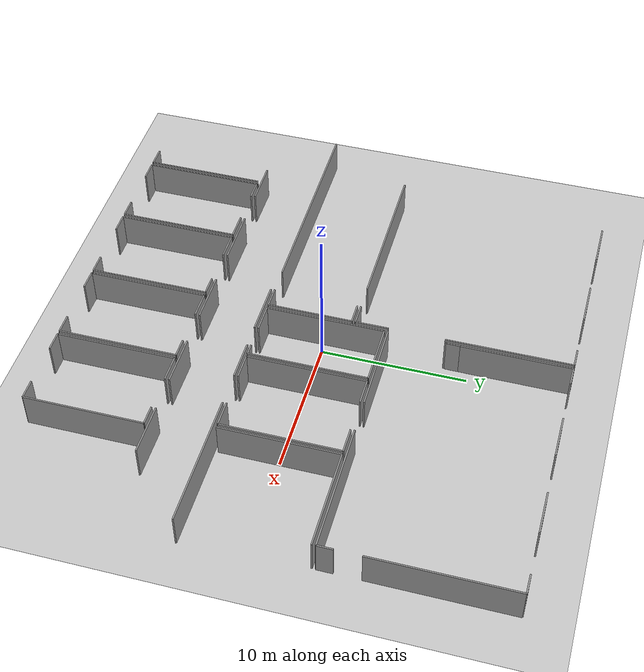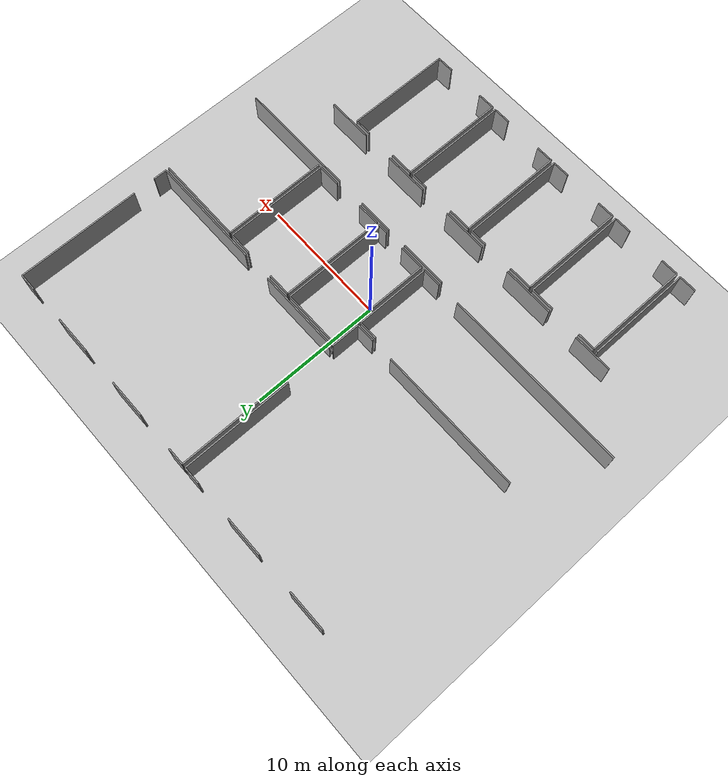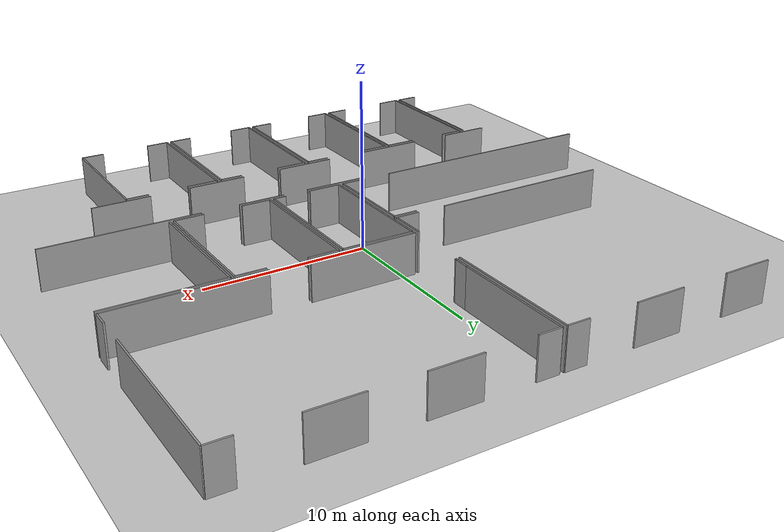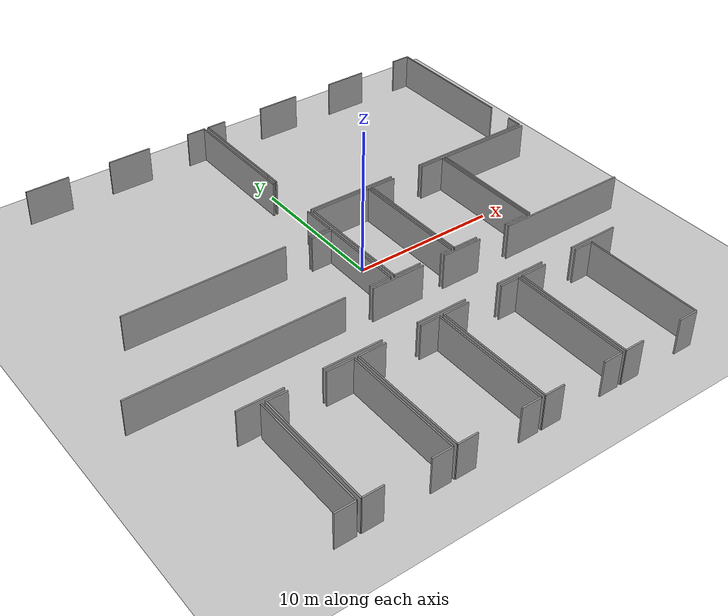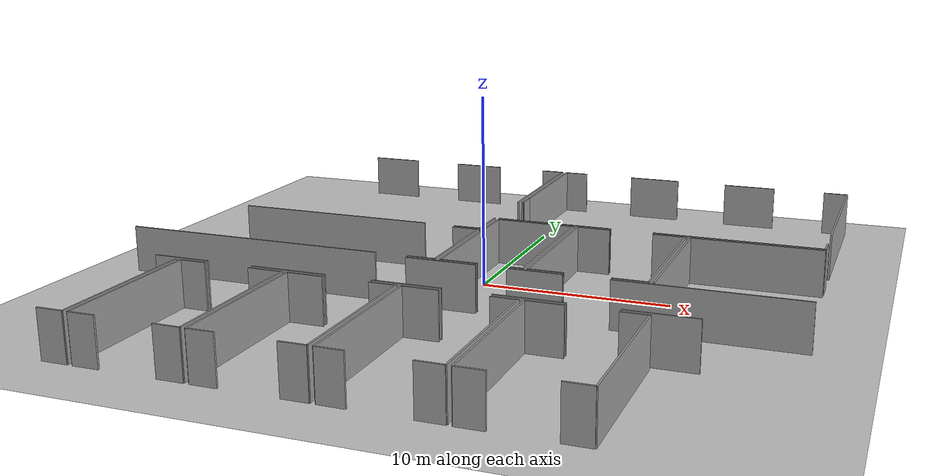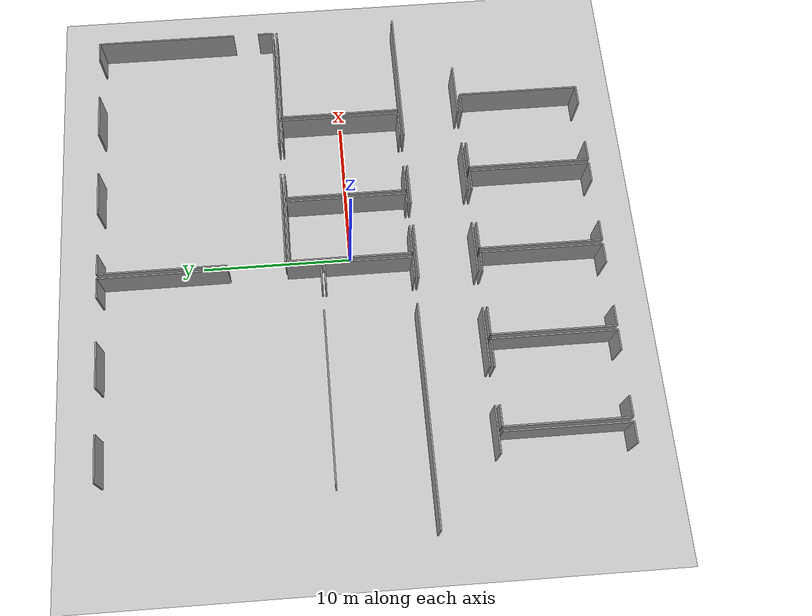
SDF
<sdf version="1.6">
 <world name="default">
  <model name="ground_plane">
   <static>1</static>
   <link name="link">
    <collision name="collision">
     <geometry><plane><normal>0 0 1</normal><size>100 100</size></plane></geometry>
     <surface><friction><ode><mu>100</mu><mu2>50</mu2></ode></friction></surface>
    </collision>
    <visual name="visual">
     <cast_shadows>0</cast_shadows>
     <geometry><plane><normal>0 0 1</normal><size>100 100</size></plane></geometry>
     <material>
      <script><uri>file://media/materials/scripts/gazebo.material</uri><name>Gazebo/Grey</name></script>
     </material>
    </visual>
   </link>
  </model>
  <model name="50041174">
   <static>1</static>
   <link name="Wall_40">
    <collision name="Wall_40_Collision">
     <geometry><box><size>8.21363290175 0.1 2.5</size></box></geometry>
     <pose>4.10681645088 0 1.25 0 0 0</pose>
    </collision>
    <visual name="Wall_40_Visual">
     <pose>4.10681645088 0 1.25 0 0 0</pose>
     <geometry><box><size>8.21363290175 0.1 2.5</size></box></geometry>
     <material>
      <script><uri>file://media/materials/scripts/gazebo.material</uri><name>Gazebo/Grey</name></script>
      <ambient>1 1 1 1</ambient>
     </material>
    </visual>
    <pose>53.4805788271 -25.3062960142 0 0 0 -1.57079632679</pose>
   </link>
   <link name="Wall_41">
    <collision name="Wall_41_Collision">
     <geometry><box><size>1.36735211983 0.1 2.5</size></box></geometry>
     <pose>0.683676059914 0 1.25 0 0 0</pose>
    </collision>
    <visual name="Wall_41_Visual">
     <pose>0.683676059914 0 1.25 0 0 0</pose>
     <geometry><box><size>1.36735211983 0.1 2.5</size></box></geometry>
     <material>
      <script><uri>file://media/materials/scripts/gazebo.material</uri><name>Gazebo/Grey</name></script>
      <ambient>1 1 1 1</ambient>
     </material>
    </visual>
    <pose>53.4805788271 -33.519928916 0 0 0 3.14159265359</pose>
   </link>
   <link name="Wall_43">
    <collision name="Wall_43_Collision">
     <geometry><box><size>8.21452145215 0.1 2.5</size></box></geometry>
     <pose>4.10726072607 0 1.25 0 0 0</pose>
    </collision>
    <visual name="Wall_43_Visual">
     <pose>4.10726072607 0 1.25 0 0 0</pose>
     <geometry><box><size>8.21452145215 0.1 2.5</size></box></geometry>
     <material>
      <script><uri>file://media/materials/scripts/gazebo.material</uri><name>Gazebo/Grey</name></script>
      <ambient>1 1 1 1</ambient>
     </material>
    </visual>
    <pose>53.769357705 -33.5241177964 0 0 0 1.57079632679</pose>
   </link>
   <link name="Wall_44">
    <collision name="Wall_44_Collision">
     <geometry><box><size>1.39730896167 0.1 2.5</size></box></geometry>
     <pose>0.698654480833 0 1.25 0 0 0</pose>
    </collision>
    <visual name="Wall_44_Visual">
     <pose>0.698654480833 0 1.25 0 0 0</pose>
     <geometry><box><size>1.39730896167 0.1 2.5</size></box></geometry>
     <material>
      <script><uri>file://media/materials/scripts/gazebo.material</uri><name>Gazebo/Grey</name></script>
      <ambient>1 1 1 1</ambient>
     </material>
    </visual>
    <pose>53.769357705 -25.3095963442 0 0 0 0.0</pose>
   </link>
   <link name="Wall_45">
    <collision name="Wall_45_Collision">
     <geometry><box><size>1.86570195481 0.1 2.5</size></box></geometry>
     <pose>0.932850977405 0 1.25 0 0 0</pose>
    </collision>
    <visual name="Wall_45_Visual">
     <pose>0.932850977405 0 1.25 0 0 0</pose>
     <geometry><box><size>1.86570195481 0.1 2.5</size></box></geometry>
     <material>
      <script><uri>file://media/materials/scripts/gazebo.material</uri><name>Gazebo/Grey</name></script>
      <ambient>1 1 1 1</ambient>
     </material>
    </visual>
    <pose>57.6200812389 -25.3095963442 0 0 0 0.0</pose>
   </link>
   <link name="Wall_46">
    <collision name="Wall_46_Collision">
     <geometry><box><size>8.20436659051 0.1 2.5</size></box></geometry>
     <pose>4.10218329525 0 1.25 0 0 0</pose>
    </collision>
    <visual name="Wall_46_Visual">
     <pose>4.10218329525 0 1.25 0 0 0</pose>
     <geometry><box><size>8.20436659051 0.1 2.5</size></box></geometry>
     <material>
      <script><uri>file://media/materials/scripts/gazebo.material</uri><name>Gazebo/Grey</name></script>
      <ambient>1 1 1 1</ambient>
     </material>
    </visual>
    <pose>59.4857831937 -25.3095963442 0 0 0 -1.57079632679</pose>
   </link>
   <link name="Wall_47">
    <collision name="Wall_47_Collision">
     <geometry><box><size>1.36697131252 0.1 2.5</size></box></geometry>
     <pose>0.683485656258 0 1.25 0 0 0</pose>
    </collision>
    <visual name="Wall_47_Visual">
     <pose>0.683485656258 0 1.25 0 0 0</pose>
     <geometry><box><size>1.36697131252 0.1 2.5</size></box></geometry>
     <material>
      <script><uri>file://media/materials/scripts/gazebo.material</uri><name>Gazebo/Grey</name></script>
      <ambient>1 1 1 1</ambient>
     </material>
    </visual>
    <pose>59.4857831937 -33.5139629348 0 0 0 3.14159265359</pose>
   </link>
   <link name="Wall_48">
    <collision name="Wall_48_Collision">
     <geometry><box><size>1.3757673589 0.1 2.5</size></box></geometry>
     <pose>0.687883679449 0 1.25 0 0 0</pose>
    </collision>
    <visual name="Wall_48_Visual">
     <pose>0.687883679449 0 1.25 0 0 0</pose>
     <geometry><box><size>1.3757673589 0.1 2.5</size></box></geometry>
     <material>
      <script><uri>file://media/materials/scripts/gazebo.material</uri><name>Gazebo/Grey</name></script>
      <ambient>1 1 1 1</ambient>
     </material>
    </visual>
    <pose>55.1450875857 -33.5139629348 0 0 0 -3.13421135196</pose>
   </link>
   <link name="Wall_49">
    <collision name="Wall_49_Collision">
     <geometry><box><size>8.20373191165 0.1 2.5</size></box></geometry>
     <pose>4.10186595583 0 1.25 0 0 0</pose>
    </collision>
    <visual name="Wall_49_Visual">
     <pose>4.10186595583 0 1.25 0 0 0</pose>
     <geometry><box><size>8.20373191165 0.1 2.5</size></box></geometry>
     <material>
      <script><uri>file://media/materials/scripts/gazebo.material</uri><name>Gazebo/Grey</name></script>
      <ambient>1 1 1 1</ambient>
     </material>
    </visual>
    <pose>59.7659304392 -33.5189134298 0 0 0 1.57079632679</pose>
   </link>
   <link name="Wall_50">
    <collision name="Wall_50_Collision">
     <geometry><box><size>1.87890327494 0.1 2.5</size></box></geometry>
     <pose>0.939451637471 0 1.25 0 0 0</pose>
    </collision>
    <visual name="Wall_50_Visual">
     <pose>0.939451637471 0 1.25 0 0 0</pose>
     <geometry><box><size>1.87890327494 0.1 2.5</size></box></geometry>
     <material>
      <script><uri>file://media/materials/scripts/gazebo.material</uri><name>Gazebo/Grey</name></script>
      <ambient>1 1 1 1</ambient>
     </material>
    </visual>
    <pose>59.7659304392 -25.3151815182 0 0 0 0.0</pose>
   </link>
   <link name="Wall_51">
    <collision name="Wall_51_Collision">
     <geometry><box><size>1.37598375222 0.1 2.5</size></box></geometry>
     <pose>0.687991876111 0 1.25 0 0 0</pose>
    </collision>
    <visual name="Wall_51_Visual">
     <pose>0.687991876111 0 1.25 0 0 0</pose>
     <geometry><box><size>1.37598375222 0.1 2.5</size></box></geometry>
     <material>
      <script><uri>file://media/materials/scripts/gazebo.material</uri><name>Gazebo/Grey</name></script>
      <ambient>1 1 1 1</ambient>
     </material>
    </visual>
    <pose>64.0983752221 -25.3151815182 0 0 0 0.0</pose>
   </link>
   <link name="Wall_52">
    <collision name="Wall_52_Collision">
     <geometry><box><size>8.19954303123 0.1 2.5</size></box></geometry>
     <pose>4.09977151561 0 1.25 0 0 0</pose>
    </collision>
    <visual name="Wall_52_Visual">
     <pose>4.09977151561 0 1.25 0 0 0</pose>
     <geometry><box><size>8.19954303123 0.1 2.5</size></box></geometry>
     <material>
      <script><uri>file://media/materials/scripts/gazebo.material</uri><name>Gazebo/Grey</name></script>
      <ambient>1 1 1 1</ambient>
     </material>
    </visual>
    <pose>65.4743589744 -25.3151815182 0 0 0 -1.57079632679</pose>
   </link>
   <link name="Wall_53">
    <collision name="Wall_53_Collision">
     <geometry><box><size>1.35389692815 0.1 2.5</size></box></geometry>
     <pose>0.676948464077 0 1.25 0 0 0</pose>
    </collision>
    <visual name="Wall_53_Visual">
     <pose>0.676948464077 0 1.25 0 0 0</pose>
     <geometry><box><size>1.35389692815 0.1 2.5</size></box></geometry>
     <material>
      <script><uri>file://media/materials/scripts/gazebo.material</uri><name>Gazebo/Grey</name></script>
      <ambient>1 1 1 1</ambient>
     </material>
    </visual>
    <pose>65.4743589744 -33.5147245494 0 0 0 3.14159265359</pose>
   </link>
   <link name="Wall_54">
    <collision name="Wall_54_Collision">
     <geometry><box><size>1.36634305473 0.1 2.5</size></box></geometry>
     <pose>0.683171527365 0 1.25 0 0 0</pose>
    </collision>
    <visual name="Wall_54_Visual">
     <pose>0.683171527365 0 1.25 0 0 0</pose>
     <geometry><box><size>1.36634305473 0.1 2.5</size></box></geometry>
     <material>
      <script><uri>file://media/materials/scripts/gazebo.material</uri><name>Gazebo/Grey</name></script>
      <ambient>1 1 1 1</ambient>
     </material>
    </visual>
    <pose>61.1322670729 -33.5147245494 0 0 0 -3.13852688839</pose>
   </link>
   <link name="Wall_55">
    <collision name="Wall_55_Collision">
     <geometry><box><size>8.20373191165 0.1 2.5</size></box></geometry>
     <pose>4.10186595583 0 1.25 0 0 0</pose>
    </collision>
    <visual name="Wall_55_Visual">
     <pose>4.10186595583 0 1.25 0 0 0</pose>
     <geometry><box><size>8.20373191165 0.1 2.5</size></box></geometry>
     <material>
      <script><uri>file://media/materials/scripts/gazebo.material</uri><name>Gazebo/Grey</name></script>
      <ambient>1 1 1 1</ambient>
     </material>
    </visual>
    <pose>65.7650418888 -33.5161208429 0 0 0 1.57079632679</pose>
   </link>
   <link name="Wall_56">
    <collision name="Wall_56_Collision">
     <geometry><box><size>1.85783193704 0.1 2.5</size></box></geometry>
     <pose>0.92891596852 0 1.25 0 0 0</pose>
    </collision>
    <visual name="Wall_56_Visual">
     <pose>0.92891596852 0 1.25 0 0 0</pose>
     <geometry><box><size>1.85783193704 0.1 2.5</size></box></geometry>
     <material>
      <script><uri>file://media/materials/scripts/gazebo.material</uri><name>Gazebo/Grey</name></script>
      <ambient>1 1 1 1</ambient>
     </material>
    </visual>
    <pose>65.7650418888 -25.3123889312 0 0 0 0.0</pose>
   </link>
   <link name="Wall_57">
    <collision name="Wall_57_Collision">
     <geometry><box><size>1.3687484133 0.1 2.5</size></box></geometry>
     <pose>0.684374206651 0 1.25 0 0 0</pose>
    </collision>
    <visual name="Wall_57_Visual">
     <pose>0.684374206651 0 1.25 0 0 0</pose>
     <geometry><box><size>1.3687484133 0.1 2.5</size></box></geometry>
     <material>
      <script><uri>file://media/materials/scripts/gazebo.material</uri><name>Gazebo/Grey</name></script>
      <ambient>1 1 1 1</ambient>
     </material>
    </visual>
    <pose>70.110053313 -25.3123889312 0 0 0 0.0</pose>
   </link>
   <link name="Wall_58">
    <collision name="Wall_58_Collision">
     <geometry><box><size>8.20703224169 0.1 2.5</size></box></geometry>
     <pose>4.10351612084 0 1.25 0 0 0</pose>
    </collision>
    <visual name="Wall_58_Visual">
     <pose>4.10351612084 0 1.25 0 0 0</pose>
     <geometry><box><size>8.20703224169 0.1 2.5</size></box></geometry>
     <material>
      <script><uri>file://media/materials/scripts/gazebo.material</uri><name>Gazebo/Grey</name></script>
      <ambient>1 1 1 1</ambient>
     </material>
    </visual>
    <pose>71.4788017263 -25.3123889312 0 0 0 -1.57079632679</pose>
   </link>
   <link name="Wall_59">
    <collision name="Wall_59_Collision">
     <geometry><box><size>1.36329017517 0.1 2.5</size></box></geometry>
     <pose>0.681645087586 0 1.25 0 0 0</pose>
    </collision>
    <visual name="Wall_59_Visual">
     <pose>0.681645087586 0 1.25 0 0 0</pose>
     <geometry><box><size>1.36329017517 0.1 2.5</size></box></geometry>
     <material>
      <script><uri>file://media/materials/scripts/gazebo.material</uri><name>Gazebo/Grey</name></script>
      <ambient>1 1 1 1</ambient>
     </material>
    </visual>
    <pose>71.4788017263 -33.5194211729 0 0 0 3.14159265359</pose>
   </link>
   <link name="Wall_60">
    <collision name="Wall_60_Collision">
     <geometry><box><size>1.36532513636 0.1 2.5</size></box></geometry>
     <pose>0.682662568182 0 1.25 0 0 0</pose>
    </collision>
    <visual name="Wall_60_Visual">
     <pose>0.682662568182 0 1.25 0 0 0</pose>
     <geometry><box><size>1.36532513636 0.1 2.5</size></box></geometry>
     <material>
      <script><uri>file://media/materials/scripts/gazebo.material</uri><name>Gazebo/Grey</name></script>
      <ambient>1 1 1 1</ambient>
     </material>
    </visual>
    <pose>67.1303630363 -33.5194211729 0 0 0 3.13917540281</pose>
   </link>
   <link name="Wall_61">
    <collision name="Wall_61_Collision">
     <geometry><box><size>8.21782178218 0.1 2.5</size></box></geometry>
     <pose>4.10891089109 0 1.25 0 0 0</pose>
    </collision>
    <visual name="Wall_61_Visual">
     <pose>4.10891089109 0 1.25 0 0 0</pose>
     <geometry><box><size>8.21782178218 0.1 2.5</size></box></geometry>
     <material>
      <script><uri>file://media/materials/scripts/gazebo.material</uri><name>Gazebo/Grey</name></script>
      <ambient>1 1 1 1</ambient>
     </material>
    </visual>
    <pose>71.7553947702 -33.5275450622 0 0 0 1.57079632679</pose>
   </link>
   <link name="Wall_62">
    <collision name="Wall_62_Collision">
     <geometry><box><size>1.87141406448 0.1 2.5</size></box></geometry>
     <pose>0.935707032242 0 1.25 0 0 0</pose>
    </collision>
    <visual name="Wall_62_Visual">
     <pose>0.935707032242 0 1.25 0 0 0</pose>
     <geometry><box><size>1.87141406448 0.1 2.5</size></box></geometry>
     <material>
      <script><uri>file://media/materials/scripts/gazebo.material</uri><name>Gazebo/Grey</name></script>
      <ambient>1 1 1 1</ambient>
     </material>
    </visual>
    <pose>71.7553947702 -25.30972328 0 0 0 0.0</pose>
   </link>
   <link name="Wall_63">
    <collision name="Wall_63_Collision">
     <geometry><box><size>1.36519421173 0.1 2.5</size></box></geometry>
     <pose>0.682597105864 0 1.25 0 0 0</pose>
    </collision>
    <visual name="Wall_63_Visual">
     <pose>0.682597105864 0 1.25 0 0 0</pose>
     <geometry><box><size>1.36519421173 0.1 2.5</size></box></geometry>
     <material>
      <script><uri>file://media/materials/scripts/gazebo.material</uri><name>Gazebo/Grey</name></script>
      <ambient>1 1 1 1</ambient>
     </material>
    </visual>
    <pose>76.099009901 -25.30972328 0 0 0 0.0</pose>
   </link>
   <link name="Wall_64">
    <collision name="Wall_64_Collision">
     <geometry><box><size>8.21261741559 0.1 2.5</size></box></geometry>
     <pose>4.10630870779 0 1.25 0 0 0</pose>
    </collision>
    <visual name="Wall_64_Visual">
     <pose>4.10630870779 0 1.25 0 0 0</pose>
     <geometry><box><size>8.21261741559 0.1 2.5</size></box></geometry>
     <material>
      <script><uri>file://media/materials/scripts/gazebo.material</uri><name>Gazebo/Grey</name></script>
      <ambient>1 1 1 1</ambient>
     </material>
    </visual>
    <pose>77.4642041127 -25.30972328 0 0 0 -1.57079632679</pose>
   </link>
   <link name="Wall_65">
    <collision name="Wall_65_Collision">
     <geometry><box><size>1.35770500127 0.1 2.5</size></box></geometry>
     <pose>0.678852500635 0 1.25 0 0 0</pose>
    </collision>
    <visual name="Wall_65_Visual">
     <pose>0.678852500635 0 1.25 0 0 0</pose>
     <geometry><box><size>1.35770500127 0.1 2.5</size></box></geometry>
     <material>
      <script><uri>file://media/materials/scripts/gazebo.material</uri><name>Gazebo/Grey</name></script>
      <ambient>1 1 1 1</ambient>
     </material>
    </visual>
    <pose>77.4642041127 -33.5223406956 0 0 0 3.14159265359</pose>
   </link>
   <link name="Wall_66">
    <collision name="Wall_66_Collision">
     <geometry><box><size>1.36888524235 0.1 2.5</size></box></geometry>
     <pose>0.684442621177 0 1.25 0 0 0</pose>
    </collision>
    <visual name="Wall_66_Visual">
     <pose>0.684442621177 0 1.25 0 0 0</pose>
     <geometry><box><size>1.36888524235 0.1 2.5</size></box></geometry>
     <material>
      <script><uri>file://media/materials/scripts/gazebo.material</uri><name>Gazebo/Grey</name></script>
      <ambient>1 1 1 1</ambient>
     </material>
    </visual>
    <pose>73.1242701193 -33.5223406956 0 0 0 -3.13779074312</pose>
   </link>
   <link name="Wall_93">
    <collision name="Wall_93_Collision">
     <geometry><box><size>3.56156384869 0.1 2.5</size></box></geometry>
     <pose>1.78078192435 0 1.25 0 0 0</pose>
    </collision>
    <visual name="Wall_93_Visual">
     <pose>1.78078192435 0 1.25 0 0 0</pose>
     <geometry><box><size>3.56156384869 0.1 2.5</size></box></geometry>
     <material>
      <script><uri>file://media/materials/scripts/gazebo.material</uri><name>Gazebo/Grey</name></script>
      <ambient>1 1 1 1</ambient>
     </material>
    </visual>
    <pose>79.6490225946 -25.0140898705 0 0 0 3.14159265359</pose>
   </link>
   <link name="Wall_94">
    <collision name="Wall_94_Collision">
     <geometry><box><size>3.53033764915 0.1 2.5</size></box></geometry>
     <pose>1.76516882457 0 1.25 0 0 0</pose>
    </collision>
    <visual name="Wall_94_Visual">
     <pose>1.76516882457 0 1.25 0 0 0</pose>
     <geometry><box><size>3.53033764915 0.1 2.5</size></box></geometry>
     <material>
      <script><uri>file://media/materials/scripts/gazebo.material</uri><name>Gazebo/Grey</name></script>
      <ambient>1 1 1 1</ambient>
     </material>
    </visual>
    <pose>73.6296014217 -25.0140898705 0 0 0 3.14159265359</pose>
   </link>
   <link name="Wall_95">
    <collision name="Wall_95_Collision">
     <geometry><box><size>3.53008377761 0.1 2.5</size></box></geometry>
     <pose>1.7650418888 0 1.25 0 0 0</pose>
    </collision>
    <visual name="Wall_95_Visual">
     <pose>1.7650418888 0 1.25 0 0 0</pose>
     <geometry><box><size>3.53008377761 0.1 2.5</size></box></geometry>
     <material>
      <script><uri>file://media/materials/scripts/gazebo.material</uri><name>Gazebo/Grey</name></script>
      <ambient>1 1 1 1</ambient>
     </material>
    </visual>
    <pose>67.6312515867 -25.0140898705 0 0 0 3.14159265359</pose>
   </link>
   <link name="Wall_96">
    <collision name="Wall_96_Collision">
     <geometry><box><size>3.99771515613 0.1 2.5</size></box></geometry>
     <pose>1.99885757807 0 1.25 0 0 0</pose>
    </collision>
    <visual name="Wall_96_Visual">
     <pose>1.99885757807 0 1.25 0 0 0</pose>
     <geometry><box><size>3.99771515613 0.1 2.5</size></box></geometry>
     <material>
      <script><uri>file://media/materials/scripts/gazebo.material</uri><name>Gazebo/Grey</name></script>
      <ambient>1 1 1 1</ambient>
     </material>
    </visual>
    <pose>61.6232546332 -25.0140898705 0 0 0 3.14159265359</pose>
   </link>
   <link name="Wall_97">
    <collision name="Wall_97_Collision">
     <geometry><box><size>3.04290429043 0.1 2.5</size></box></geometry>
     <pose>1.52145214521 0 1.25 0 0 0</pose>
    </collision>
    <visual name="Wall_97_Visual">
     <pose>1.52145214521 0 1.25 0 0 0</pose>
     <geometry><box><size>3.04290429043 0.1 2.5</size></box></geometry>
     <material>
      <script><uri>file://media/materials/scripts/gazebo.material</uri><name>Gazebo/Grey</name></script>
      <ambient>1 1 1 1</ambient>
     </material>
    </visual>
    <pose>55.1450875857 -25.0140898705 0 0 0 3.14159265359</pose>
   </link>
   <link name="Wall_115">
    <collision name="Wall_115_Collision">
     <geometry><box><size>3.74232038588 0.1 2.5</size></box></geometry>
     <pose>1.87116019294 0 1.25 0 0 0</pose>
    </collision>
    <visual name="Wall_115_Visual">
     <pose>1.87116019294 0 1.25 0 0 0</pose>
     <geometry><box><size>3.74232038588 0.1 2.5</size></box></geometry>
     <material>
      <script><uri>file://media/materials/scripts/gazebo.material</uri><name>Gazebo/Grey</name></script>
      <ambient>1 1 1 1</ambient>
     </material>
    </visual>
    <pose>64.0072353389 -21.0873318101 0 0 0 0.0</pose>
   </link>
   <link name="Wall_116">
    <collision name="Wall_116_Collision">
     <geometry><box><size>2.82889058137 0.1 2.5</size></box></geometry>
     <pose>1.41444529068 0 1.25 0 0 0</pose>
    </collision>
    <visual name="Wall_116_Visual">
     <pose>1.41444529068 0 1.25 0 0 0</pose>
     <geometry><box><size>2.82889058137 0.1 2.5</size></box></geometry>
     <material>
      <script><uri>file://media/materials/scripts/gazebo.material</uri><name>Gazebo/Grey</name></script>
      <ambient>1 1 1 1</ambient>
     </material>
    </visual>
    <pose>69.362274689 -21.0873318101 0 0 0 0.0</pose>
   </link>
   <link name="Wall_117">
    <collision name="Wall_117_Collision">
     <geometry><box><size>9.38118811881 0.1 2.5</size></box></geometry>
     <pose>4.69059405941 0 1.25 0 0 0</pose>
    </collision>
    <visual name="Wall_117_Visual">
     <pose>4.69059405941 0 1.25 0 0 0</pose>
     <geometry><box><size>9.38118811881 0.1 2.5</size></box></geometry>
     <material>
      <script><uri>file://media/materials/scripts/gazebo.material</uri><name>Gazebo/Grey</name></script>
      <ambient>1 1 1 1</ambient>
     </material>
    </visual>
    <pose>74.5363036304 -21.0873318101 0 0 0 0.0</pose>
   </link>
   <link name="Wall_164">
    <collision name="Wall_164_Collision">
     <geometry><box><size>1.48146737751 0.1 2.5</size></box></geometry>
     <pose>0.740733688753 0 1.25 0 0 0</pose>
    </collision>
    <visual name="Wall_164_Visual">
     <pose>0.740733688753 0 1.25 0 0 0</pose>
     <geometry><box><size>1.48146737751 0.1 2.5</size></box></geometry>
     <material>
      <script><uri>file://media/materials/scripts/gazebo.material</uri><name>Gazebo/Grey</name></script>
      <ambient>1 1 1 1</ambient>
     </material>
    </visual>
    <pose>63.9903528814 -14.9834983498 0 0 0 0.0</pose>
   </link>
   <link name="Wall_165">
    <collision name="Wall_165_Collision">
     <geometry><box><size>5.84348819497 0.1 2.5</size></box></geometry>
     <pose>2.92174409749 0 1.25 0 0 0</pose>
    </collision>
    <visual name="Wall_165_Visual">
     <pose>2.92174409749 0 1.25 0 0 0</pose>
     <geometry><box><size>5.84348819497 0.1 2.5</size></box></geometry>
     <material>
      <script><uri>file://media/materials/scripts/gazebo.material</uri><name>Gazebo/Grey</name></script>
      <ambient>1 1 1 1</ambient>
     </material>
    </visual>
    <pose>65.4718202589 -14.9834983498 0 0 0 -1.57079632679</pose>
   </link>
   <link name="Wall_166">
    <collision name="Wall_166_Collision">
     <geometry><box><size>1.48654480833 0.1 2.5</size></box></geometry>
     <pose>0.743272404163 0 1.25 0 0 0</pose>
    </collision>
    <visual name="Wall_166_Visual">
     <pose>0.743272404163 0 1.25 0 0 0</pose>
     <geometry><box><size>1.48654480833 0.1 2.5</size></box></geometry>
     <material>
      <script><uri>file://media/materials/scripts/gazebo.material</uri><name>Gazebo/Grey</name></script>
      <ambient>1 1 1 1</ambient>
     </material>
    </visual>
    <pose>65.4718202589 -20.8269865448 0 0 0 3.14159265359</pose>
   </link>
   <link name="Wall_167">
    <collision name="Wall_167_Collision">
     <geometry><box><size>14.4596408039 0.1 2.5</size></box></geometry>
     <pose>7.22982040196 0 1.25 0 0 0</pose>
    </collision>
    <visual name="Wall_167_Visual">
     <pose>7.22982040196 0 1.25 0 0 0</pose>
     <geometry><box><size>14.4596408039 0.1 2.5</size></box></geometry>
     <material>
      <script><uri>file://media/materials/scripts/gazebo.material</uri><name>Gazebo/Grey</name></script>
      <ambient>1 1 1 1</ambient>
     </material>
    </visual>
    <pose>62.2159177456 -20.8269865448 0 0 0 -3.14065334053</pose>
   </link>
   <link name="Wall_168">
    <collision name="Wall_168_Collision">
     <geometry><box><size>8.16476263011 0.1 2.5</size></box></geometry>
     <pose>4.08238131505 0 1.25 0 0 0</pose>
    </collision>
    <visual name="Wall_168_Visual">
     <pose>4.08238131505 0 1.25 0 0 0</pose>
     <geometry><box><size>8.16476263011 0.1 2.5</size></box></geometry>
     <material>
      <script><uri>file://media/materials/scripts/gazebo.material</uri><name>Gazebo/Grey</name></script>
      <ambient>1 1 1 1</ambient>
     </material>
    </visual>
    <pose>65.7691038335 -20.8368875349 0 0 0 1.57079632679</pose>
   </link>
   <link name="Wall_169">
    <collision name="Wall_169_Collision">
     <geometry><box><size>4.33485656258 0.1 2.5</size></box></geometry>
     <pose>2.16742828129 0 1.25 0 0 0</pose>
    </collision>
    <visual name="Wall_169_Visual">
     <pose>2.16742828129 0 1.25 0 0 0</pose>
     <geometry><box><size>4.33485656258 0.1 2.5</size></box></geometry>
     <material>
      <script><uri>file://media/materials/scripts/gazebo.material</uri><name>Gazebo/Grey</name></script>
      <ambient>1 1 1 1</ambient>
     </material>
    </visual>
    <pose>65.7691038335 -12.6721249048 0 0 0 0.0</pose>
   </link>
   <link name="Wall_170">
    <collision name="Wall_170_Collision">
     <geometry><box><size>8.16336633663 0.1 2.5</size></box></geometry>
     <pose>4.08168316832 0 1.25 0 0 0</pose>
    </collision>
    <visual name="Wall_170_Visual">
     <pose>4.08168316832 0 1.25 0 0 0</pose>
     <geometry><box><size>8.16336633663 0.1 2.5</size></box></geometry>
     <material>
      <script><uri>file://media/materials/scripts/gazebo.material</uri><name>Gazebo/Grey</name></script>
      <ambient>1 1 1 1</ambient>
     </material>
    </visual>
    <pose>70.103960396 -12.6721249048 0 0 0 -1.57079632679</pose>
   </link>
   <link name="Wall_171">
    <collision name="Wall_171_Collision">
     <geometry><box><size>0.768723026149 0.1 2.5</size></box></geometry>
     <pose>0.384361513074 0 1.25 0 0 0</pose>
    </collision>
    <visual name="Wall_171_Visual">
     <pose>0.384361513074 0 1.25 0 0 0</pose>
     <geometry><box><size>0.768723026149 0.1 2.5</size></box></geometry>
     <material>
      <script><uri>file://media/materials/scripts/gazebo.material</uri><name>Gazebo/Grey</name></script>
      <ambient>1 1 1 1</ambient>
     </material>
    </visual>
    <pose>70.103960396 -20.8354912414 0 0 0 3.14159265359</pose>
   </link>
   <link name="Wall_172">
    <collision name="Wall_172_Collision">
     <geometry><box><size>1.967124131 0.1 2.5</size></box></geometry>
     <pose>0.983562065498 0 1.25 0 0 0</pose>
    </collision>
    <visual name="Wall_172_Visual">
     <pose>0.983562065498 0 1.25 0 0 0</pose>
     <geometry><box><size>1.967124131 0.1 2.5</size></box></geometry>
     <material>
      <script><uri>file://media/materials/scripts/gazebo.material</uri><name>Gazebo/Grey</name></script>
      <ambient>1 1 1 1</ambient>
     </material>
    </visual>
    <pose>67.7362274689 -20.8354912414 0 0 0 -3.14088283891</pose>
   </link>
   <link name="Wall_173">
    <collision name="Wall_173_Collision">
     <geometry><box><size>8.15676567657 0.1 2.5</size></box></geometry>
     <pose>4.07838283828 0 1.25 0 0 0</pose>
    </collision>
    <visual name="Wall_173_Visual">
     <pose>4.07838283828 0 1.25 0 0 0</pose>
     <geometry><box><size>8.15676567657 0.1 2.5</size></box></geometry>
     <material>
      <script><uri>file://media/materials/scripts/gazebo.material</uri><name>Gazebo/Grey</name></script>
      <ambient>1 1 1 1</ambient>
     </material>
    </visual>
    <pose>70.3608783955 -20.8365067276 0 0 0 1.57079632679</pose>
   </link>
   <link name="Wall_174">
    <collision name="Wall_174_Collision">
     <geometry><box><size>1.80769230769 0.1 2.5</size></box></geometry>
     <pose>0.903846153846 0 1.25 0 0 0</pose>
    </collision>
    <visual name="Wall_174_Visual">
     <pose>0.903846153846 0 1.25 0 0 0</pose>
     <geometry><box><size>1.80769230769 0.1 2.5</size></box></geometry>
     <material>
      <script><uri>file://media/materials/scripts/gazebo.material</uri><name>Gazebo/Grey</name></script>
      <ambient>1 1 1 1</ambient>
     </material>
    </visual>
    <pose>70.3608783955 -12.679741051 0 0 0 0.0</pose>
   </link>
   <link name="Wall_175">
    <collision name="Wall_175_Collision">
     <geometry><box><size>1.77037319117 0.1 2.5</size></box></geometry>
     <pose>0.885186595583 0 1.25 0 0 0</pose>
    </collision>
    <visual name="Wall_175_Visual">
     <pose>0.885186595583 0 1.25 0 0 0</pose>
     <geometry><box><size>1.77037319117 0.1 2.5</size></box></geometry>
     <material>
      <script><uri>file://media/materials/scripts/gazebo.material</uri><name>Gazebo/Grey</name></script>
      <ambient>1 1 1 1</ambient>
     </material>
    </visual>
    <pose>74.5363036304 -12.679741051 0 0 0 0.0</pose>
   </link>
   <link name="Wall_176">
    <collision name="Wall_176_Collision">
     <geometry><box><size>8.1544808327 0.1 2.5</size></box></geometry>
     <pose>4.07724041635 0 1.25 0 0 0</pose>
    </collision>
    <visual name="Wall_176_Visual">
     <pose>4.07724041635 0 1.25 0 0 0</pose>
     <geometry><box><size>8.1544808327 0.1 2.5</size></box></geometry>
     <material>
      <script><uri>file://media/materials/scripts/gazebo.material</uri><name>Gazebo/Grey</name></script>
      <ambient>1 1 1 1</ambient>
     </material>
    </visual>
    <pose>76.3066768215 -12.679741051 0 0 0 -1.57079632679</pose>
   </link>
   <link name="Wall_177">
    <collision name="Wall_177_Collision">
     <geometry><box><size>1.7969027672 0.1 2.5</size></box></geometry>
     <pose>0.8984513836 0 1.25 0 0 0</pose>
    </collision>
    <visual name="Wall_177_Visual">
     <pose>0.8984513836 0 1.25 0 0 0</pose>
     <geometry><box><size>1.7969027672 0.1 2.5</size></box></geometry>
     <material>
      <script><uri>file://media/materials/scripts/gazebo.material</uri><name>Gazebo/Grey</name></script>
      <ambient>1 1 1 1</ambient>
     </material>
    </visual>
    <pose>76.3066768215 -20.8342218837 0 0 0 3.14159265359</pose>
   </link>
   <link name="Wall_178">
    <collision name="Wall_178_Collision">
     <geometry><box><size>1.79512712049 0.1 2.5</size></box></geometry>
     <pose>0.897563560246 0 1.25 0 0 0</pose>
    </collision>
    <visual name="Wall_178_Visual">
     <pose>0.897563560246 0 1.25 0 0 0</pose>
     <geometry><box><size>1.79512712049 0.1 2.5</size></box></geometry>
     <material>
      <script><uri>file://media/materials/scripts/gazebo.material</uri><name>Gazebo/Grey</name></script>
      <ambient>1 1 1 1</ambient>
     </material>
    </visual>
    <pose>72.1560040619 -20.8342218837 0 0 0 -3.14031984986</pose>
   </link>
   <link name="Wall_179">
    <collision name="Wall_179_Collision">
     <geometry><box><size>8.15613099772 0.1 2.5</size></box></geometry>
     <pose>4.07806549886 0 1.25 0 0 0</pose>
    </collision>
    <visual name="Wall_179_Visual">
     <pose>4.07806549886 0 1.25 0 0 0</pose>
     <geometry><box><size>8.15613099772 0.1 2.5</size></box></geometry>
     <material>
      <script><uri>file://media/materials/scripts/gazebo.material</uri><name>Gazebo/Grey</name></script>
      <ambient>1 1 1 1</ambient>
     </material>
    </visual>
    <pose>76.5566133536 -20.8429804519 0 0 0 1.57079632679</pose>
   </link>
   <link name="Wall_180">
    <collision name="Wall_180_Collision">
     <geometry><box><size>6.93323178472 0.1 2.5</size></box></geometry>
     <pose>3.46661589236 0 1.25 0 0 0</pose>
    </collision>
    <visual name="Wall_180_Visual">
     <pose>3.46661589236 0 1.25 0 0 0</pose>
     <geometry><box><size>6.93323178472 0.1 2.5</size></box></geometry>
     <material>
      <script><uri>file://media/materials/scripts/gazebo.material</uri><name>Gazebo/Grey</name></script>
      <ambient>1 1 1 1</ambient>
     </material>
    </visual>
    <pose>76.5566133536 -12.6868494542 0 0 0 0.0</pose>
   </link>
   <link name="Wall_280">
    <collision name="Wall_280_Collision">
     <geometry><box><size>3.01916730135 0.1 2.5</size></box></geometry>
     <pose>1.50958365067 0 1.25 0 0 0</pose>
    </collision>
    <visual name="Wall_280_Visual">
     <pose>1.50958365067 0 1.25 0 0 0</pose>
     <geometry><box><size>3.01916730135 0.1 2.5</size></box></geometry>
     <material>
      <script><uri>file://media/materials/scripts/gazebo.material</uri><name>Gazebo/Grey</name></script>
      <ambient>1 1 1 1</ambient>
     </material>
    </visual>
    <pose>52.123889312 -0.0105356689515 0 0 0 0.0</pose>
   </link>
   <link name="Wall_281">
    <collision name="Wall_281_Collision">
     <geometry><box><size>3.03693830922 0.1 2.5</size></box></geometry>
     <pose>1.51846915461 0 1.25 0 0 0</pose>
    </collision>
    <visual name="Wall_281_Visual">
     <pose>1.51846915461 0 1.25 0 0 0</pose>
     <geometry><box><size>3.03693830922 0.1 2.5</size></box></geometry>
     <material>
      <script><uri>file://media/materials/scripts/gazebo.material</uri><name>Gazebo/Grey</name></script>
      <ambient>1 1 1 1</ambient>
     </material>
    </visual>
    <pose>58.1015486164 -0.0105356689515 0 0 0 0.0</pose>
   </link>
   <link name="Wall_282">
    <collision name="Wall_282_Collision">
     <geometry><box><size>1.35135821274 0.1 2.5</size></box></geometry>
     <pose>0.675679106372 0 1.25 0 0 0</pose>
    </collision>
    <visual name="Wall_282_Visual">
     <pose>0.675679106372 0 1.25 0 0 0</pose>
     <geometry><box><size>1.35135821274 0.1 2.5</size></box></geometry>
     <material>
      <script><uri>file://media/materials/scripts/gazebo.material</uri><name>Gazebo/Grey</name></script>
      <ambient>1 1 1 1</ambient>
     </material>
    </visual>
    <pose>64.1204620462 -0.0105356689515 0 0 0 0.0</pose>
   </link>
   <link name="Wall_283">
    <collision name="Wall_283_Collision">
     <geometry><box><size>8.5959634425 0.1 2.5</size></box></geometry>
     <pose>4.29798172125 0 1.25 0 0 0</pose>
    </collision>
    <visual name="Wall_283_Visual">
     <pose>4.29798172125 0 1.25 0 0 0</pose>
     <geometry><box><size>8.5959634425 0.1 2.5</size></box></geometry>
     <material>
      <script><uri>file://media/materials/scripts/gazebo.material</uri><name>Gazebo/Grey</name></script>
      <ambient>1 1 1 1</ambient>
     </material>
    </visual>
    <pose>65.4718202589 -0.0105356689515 0 0 0 -1.57079632679</pose>
   </link>
   <link name="Wall_284">
    <collision name="Wall_284_Collision">
     <geometry><box><size>2.27405432851 0.1 2.5</size></box></geometry>
     <pose>1.13702716425 0 1.25 0 0 0</pose>
    </collision>
    <visual name="Wall_284_Visual">
     <pose>1.13702716425 0 1.25 0 0 0</pose>
     <geometry><box><size>2.27405432851 0.1 2.5</size></box></geometry>
     <material>
      <script><uri>file://media/materials/scripts/gazebo.material</uri><name>Gazebo/Grey</name></script>
      <ambient>1 1 1 1</ambient>
     </material>
    </visual>
    <pose>65.4718202589 -12.4656004062 0 0 0 -1.57079632679</pose>
   </link>
   <link name="Wall_285">
    <collision name="Wall_285_Collision">
     <geometry><box><size>1.48641787256 0.1 2.5</size></box></geometry>
     <pose>0.743208936278 0 1.25 0 0 0</pose>
    </collision>
    <visual name="Wall_285_Visual">
     <pose>0.743208936278 0 1.25 0 0 0</pose>
     <geometry><box><size>1.48641787256 0.1 2.5</size></box></geometry>
     <material>
      <script><uri>file://media/materials/scripts/gazebo.material</uri><name>Gazebo/Grey</name></script>
      <ambient>1 1 1 1</ambient>
     </material>
    </visual>
    <pose>65.4718202589 -14.7396547347 0 0 0 3.14159265359</pose>
   </link>
   <link name="Wall_286">
    <collision name="Wall_286_Collision">
     <geometry><box><size>11.2268342219 0.1 2.5</size></box></geometry>
     <pose>5.61341711094 0 1.25 0 0 0</pose>
    </collision>
    <visual name="Wall_286_Visual">
     <pose>5.61341711094 0 1.25 0 0 0</pose>
     <geometry><box><size>11.2268342219 0.1 2.5</size></box></geometry>
     <material>
      <script><uri>file://media/materials/scripts/gazebo.material</uri><name>Gazebo/Grey</name></script>
      <ambient>1 1 1 1</ambient>
     </material>
    </visual>
    <pose>62.2293729373 -14.7396547347 0 0 0 3.14159265359</pose>
   </link>
   <link name="Wall_288">
    <collision name="Wall_288_Collision">
     <geometry><box><size>7.50050774308 0.1 2.5</size></box></geometry>
     <pose>3.75025387154 0 1.25 0 0 0</pose>
    </collision>
    <visual name="Wall_288_Visual">
     <pose>3.75025387154 0 1.25 0 0 0</pose>
     <geometry><box><size>7.50050774308 0.1 2.5</size></box></geometry>
     <material>
      <script><uri>file://media/materials/scripts/gazebo.material</uri><name>Gazebo/Grey</name></script>
      <ambient>1 1 1 1</ambient>
     </material>
    </visual>
    <pose>65.7685960904 -7.5189134298 0 0 0 1.57079632679</pose>
   </link>
   <link name="Wall_289">
    <collision name="Wall_289_Collision">
     <geometry><box><size>1.37357197258 0.1 2.5</size></box></geometry>
     <pose>0.686785986291 0 1.25 0 0 0</pose>
    </collision>
    <visual name="Wall_289_Visual">
     <pose>0.686785986291 0 1.25 0 0 0</pose>
     <geometry><box><size>1.37357197258 0.1 2.5</size></box></geometry>
     <material>
      <script><uri>file://media/materials/scripts/gazebo.material</uri><name>Gazebo/Grey</name></script>
      <ambient>1 1 1 1</ambient>
     </material>
    </visual>
    <pose>65.7685960904 -0.0184056867225 0 0 0 0.0</pose>
   </link>
   <link name="Wall_290">
    <collision name="Wall_290_Collision">
     <geometry><box><size>3.03351104341 0.1 2.5</size></box></geometry>
     <pose>1.51675552171 0 1.25 0 0 0</pose>
    </collision>
    <visual name="Wall_290_Visual">
     <pose>1.51675552171 0 1.25 0 0 0</pose>
     <geometry><box><size>3.03351104341 0.1 2.5</size></box></geometry>
     <material>
      <script><uri>file://media/materials/scripts/gazebo.material</uri><name>Gazebo/Grey</name></script>
      <ambient>1 1 1 1</ambient>
     </material>
    </visual>
    <pose>70.1047220107 -0.0184056867225 0 0 0 0.0</pose>
   </link>
   <link name="Wall_291">
    <collision name="Wall_291_Collision">
     <geometry><box><size>3.02779893374 0.1 2.5</size></box></geometry>
     <pose>1.51389946687 0 1.25 0 0 0</pose>
    </collision>
    <visual name="Wall_291_Visual">
     <pose>1.51389946687 0 1.25 0 0 0</pose>
     <geometry><box><size>3.02779893374 0.1 2.5</size></box></geometry>
     <material>
      <script><uri>file://media/materials/scripts/gazebo.material</uri><name>Gazebo/Grey</name></script>
      <ambient>1 1 1 1</ambient>
     </material>
    </visual>
    <pose>76.1000253872 -0.0184056867225 0 0 0 0.0</pose>
   </link>
   <link name="Wall_292">
    <collision name="Wall_292_Collision">
     <geometry><box><size>1.34615384615 0.1 2.5</size></box></geometry>
     <pose>0.673076923077 0 1.25 0 0 0</pose>
    </collision>
    <visual name="Wall_292_Visual">
     <pose>0.673076923077 0 1.25 0 0 0</pose>
     <geometry><box><size>1.34615384615 0.1 2.5</size></box></geometry>
     <material>
      <script><uri>file://media/materials/scripts/gazebo.material</uri><name>Gazebo/Grey</name></script>
      <ambient>1 1 1 1</ambient>
     </material>
    </visual>
    <pose>82.1148768723 -0.0184056867225 0 0 0 0.0</pose>
   </link>
   <link name="Wall_293">
    <collision name="Wall_293_Collision">
     <geometry><box><size>9.59075907591 0.1 2.5</size></box></geometry>
     <pose>4.79537953795 0 1.25 0 0 0</pose>
    </collision>
    <visual name="Wall_293_Visual">
     <pose>4.79537953795 0 1.25 0 0 0</pose>
     <geometry><box><size>9.59075907591 0.1 2.5</size></box></geometry>
     <material>
      <script><uri>file://media/materials/scripts/gazebo.material</uri><name>Gazebo/Grey</name></script>
      <ambient>1 1 1 1</ambient>
     </material>
    </visual>
    <pose>83.4610307185 -0.0184056867225 0 0 0 -1.57079632679</pose>
   </link>
   <link name="Wall_294">
    <collision name="Wall_294_Collision">
     <geometry><box><size>1.05915206905 0.1 2.5</size></box></geometry>
     <pose>0.529576034527 0 1.25 0 0 0</pose>
    </collision>
    <visual name="Wall_294_Visual">
     <pose>0.529576034527 0 1.25 0 0 0</pose>
     <geometry><box><size>1.05915206905 0.1 2.5</size></box></geometry>
     <material>
      <script><uri>file://media/materials/scripts/gazebo.material</uri><name>Gazebo/Grey</name></script>
      <ambient>1 1 1 1</ambient>
     </material>
    </visual>
    <pose>83.4610307185 -11.3651942117 0 0 0 -1.57079632679</pose>
   </link>
   <link name="Wall_295">
    <collision name="Wall_295_Collision">
     <geometry><box><size>8.95379537954 0.1 2.5</size></box></geometry>
     <pose>4.47689768977 0 1.25 0 0 0</pose>
    </collision>
    <visual name="Wall_295_Visual">
     <pose>4.47689768977 0 1.25 0 0 0</pose>
     <geometry><box><size>8.95379537954 0.1 2.5</size></box></geometry>
     <material>
      <script><uri>file://media/materials/scripts/gazebo.material</uri><name>Gazebo/Grey</name></script>
      <ambient>1 1 1 1</ambient>
     </material>
    </visual>
    <pose>83.4610307185 -12.4243462808 0 0 0 3.14159265359</pose>
   </link>
   <link name="Wall_296">
    <collision name="Wall_296_Collision">
     <geometry><box><size>6.42498095963 0.1 2.5</size></box></geometry>
     <pose>3.21249047982 0 1.25 0 0 0</pose>
    </collision>
    <visual name="Wall_296_Visual">
     <pose>3.21249047982 0 1.25 0 0 0</pose>
     <geometry><box><size>6.42498095963 0.1 2.5</size></box></geometry>
     <material>
      <script><uri>file://media/materials/scripts/gazebo.material</uri><name>Gazebo/Grey</name></script>
      <ambient>1 1 1 1</ambient>
     </material>
    </visual>
    <pose>72.15816197 -12.4243462808 0 0 0 3.14159265359</pose>
   </link>
   <link name="Wall_297">
    <collision name="Wall_297_Collision">
     <geometry><box><size>0.107387661843 0.1 2.5</size></box></geometry>
     <pose>0.0536938309216 0 1.25 0 0 0</pose>
    </collision>
    <visual name="Wall_297_Visual">
     <pose>0.0536938309216 0 1.25 0 0 0</pose>
     <geometry><box><size>0.107387661843 0.1 2.5</size></box></geometry>
     <material>
      <script><uri>file://media/materials/scripts/gazebo.material</uri><name>Gazebo/Grey</name></script>
      <ambient>1 1 1 1</ambient>
     </material>
    </visual>
    <pose>65.7331810104 -8.57666920538 0 0 0 1.57079632679</pose>
   </link>
   <link name="Wall_298">
    <collision name="Wall_298_Collision">
     <geometry><box><size>0.0252602183295 0.1 2.5</size></box></geometry>
     <pose>0.0126301091648 0 1.25 0 0 0</pose>
    </collision>
    <visual name="Wall_298_Visual">
     <pose>0.0126301091648 0 1.25 0 0 0</pose>
     <geometry><box><size>0.0252602183295 0.1 2.5</size></box></geometry>
     <material>
      <script><uri>file://media/materials/scripts/gazebo.material</uri><name>Gazebo/Grey</name></script>
      <ambient>1 1 1 1</ambient>
     </material>
    </visual>
    <pose>65.7331810104 -8.46928154354 0 0 0 0.0</pose>
   </link>
   <link name="Wall_299">
    <collision name="Wall_299_Collision">
     <geometry><box><size>0.950422365487 0.1 2.5</size></box></geometry>
     <pose>0.475211182744 0 1.25 0 0 0</pose>
    </collision>
    <visual name="Wall_299_Visual">
     <pose>0.475211182744 0 1.25 0 0 0</pose>
     <geometry><box><size>0.950422365487 0.1 2.5</size></box></geometry>
     <material>
      <script><uri>file://media/materials/scripts/gazebo.material</uri><name>Gazebo/Grey</name></script>
      <ambient>1 1 1 1</ambient>
     </material>
    </visual>
    <pose>65.7584412287 -8.46928154354 0 0 0 1.56011154576</pose>
   </link>
   <pose>-66.5 16.7804645849 0 0 0 0</pose>
  </model>
 </world>
</sdf>
